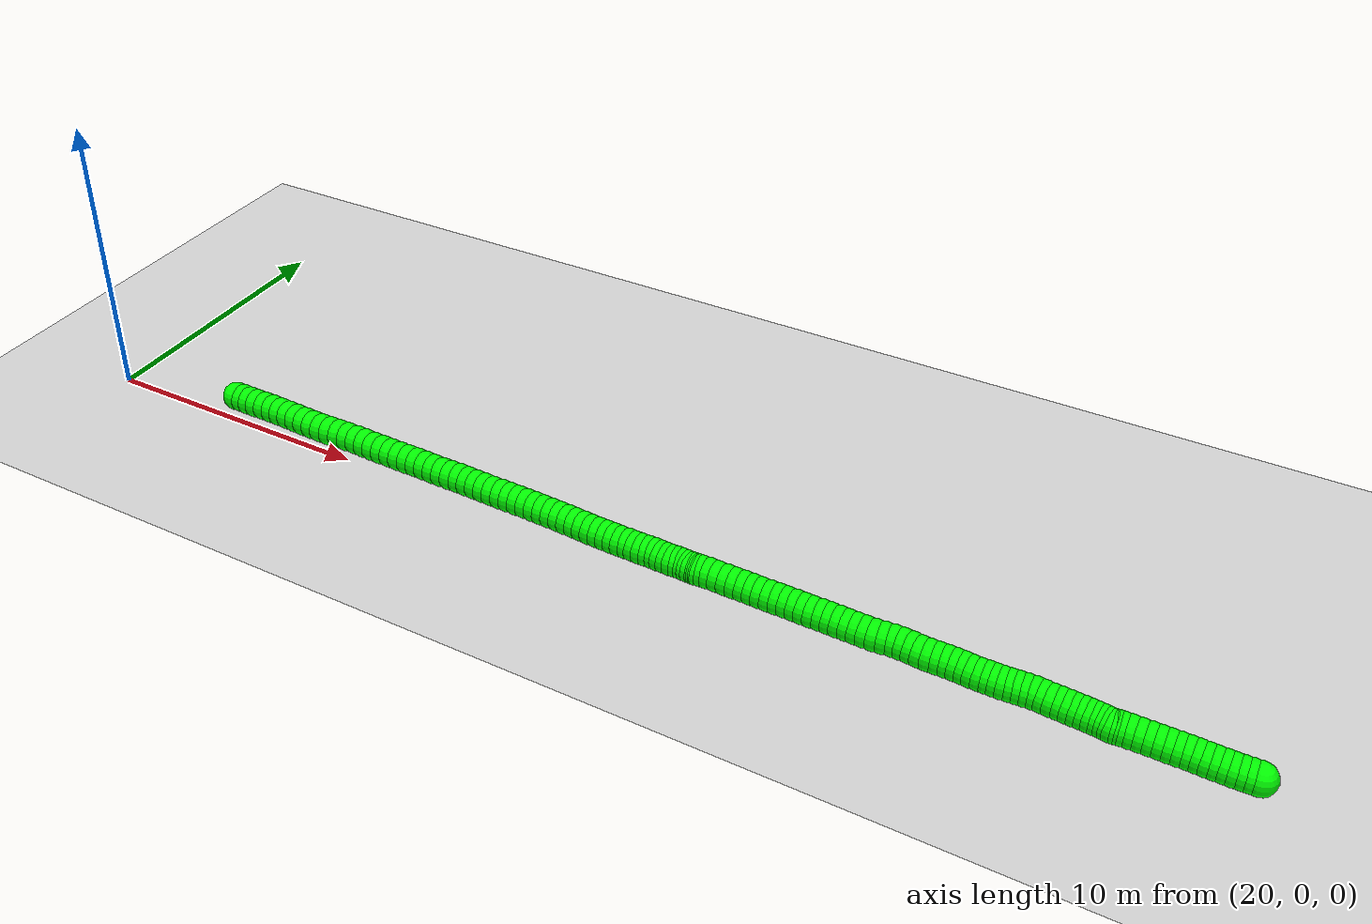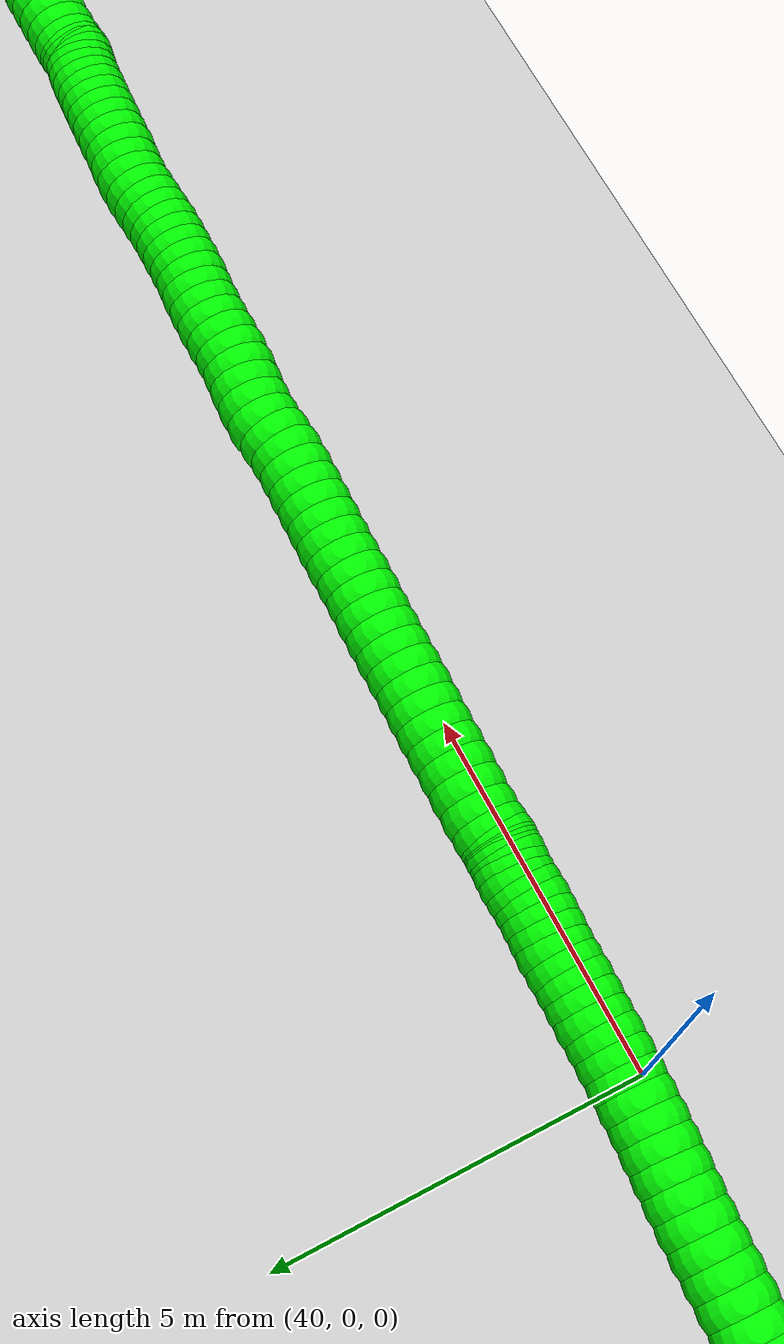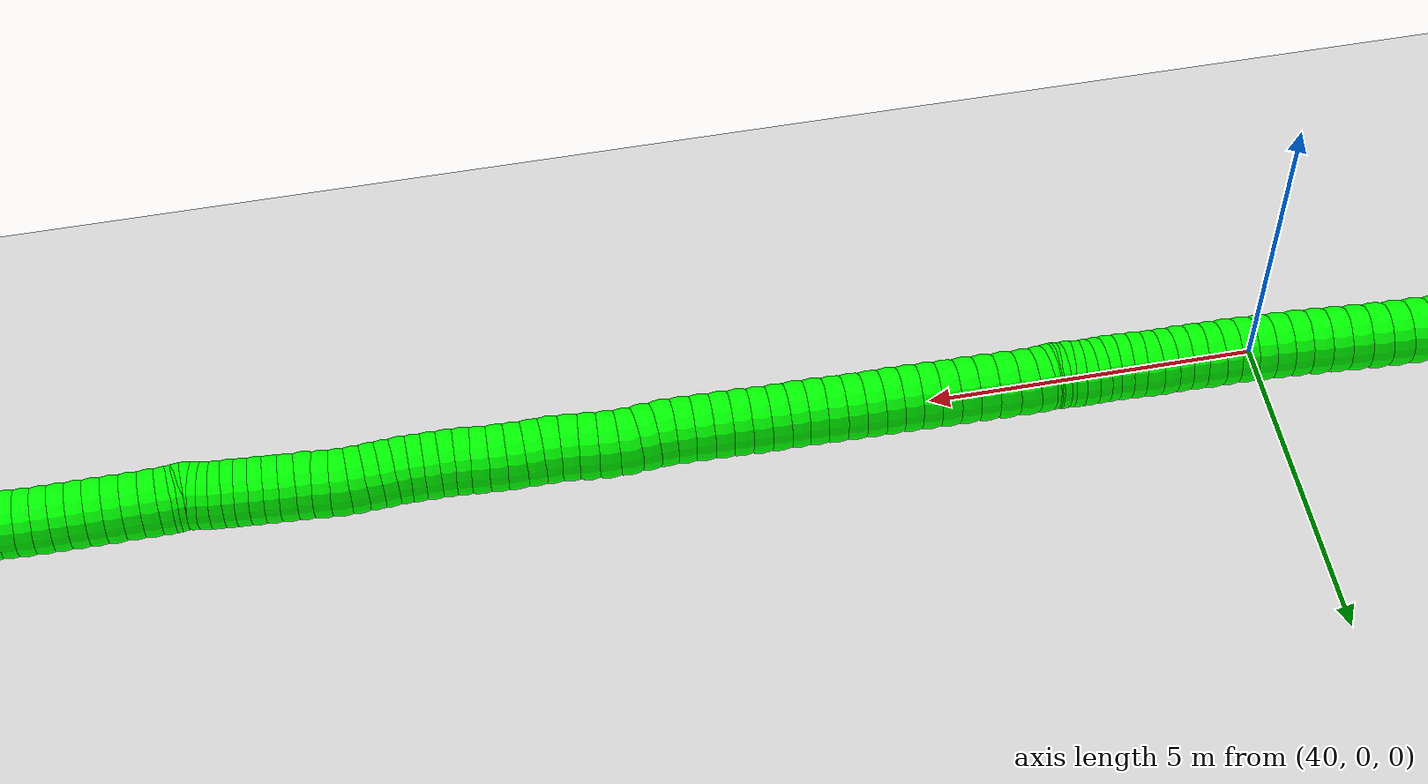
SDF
<sdf version="1.6">
 <world name="default">
  <include><uri>model://sun</uri></include>
  <include><uri>model://ground_plane</uri></include>
  <model name="marker_540">
   <static>true</static>
   <link name="link">
    <visual name="visual">
     <geometry><sphere><radius>0.5</radius></sphere></geometry>
     <material><ambient>0 1 0 1</ambient><diffuse>0 1 0 1</diffuse></material>
     <pose>60.00896098525234 0.022881425192011806 0.5 0 0 0</pose>
    </visual>
   </link>
  </model>
  <model name="marker_541">
   <static>true</static>
   <link name="link">
    <visual name="visual">
     <geometry><sphere><radius>0.5</radius></sphere></geometry>
     <material><ambient>0 1 0 1</ambient><diffuse>0 1 0 1</diffuse></material>
     <pose>59.793667570409646 0.017161068894008855 0.5 0 0 0</pose>
    </visual>
   </link>
  </model>
  <model name="marker_542">
   <static>true</static>
   <link name="link">
    <visual name="visual">
     <geometry><sphere><radius>0.5</radius></sphere></geometry>
     <material><ambient>0 1 0 1</ambient><diffuse>0 1 0 1</diffuse></material>
     <pose>59.572170396590316 0.011440712596005903 0.5 0 0 0</pose>
    </visual>
   </link>
  </model>
  <model name="marker_543">
   <static>true</static>
   <link name="link">
    <visual name="visual">
     <geometry><sphere><radius>0.5</radius></sphere></geometry>
     <material><ambient>0 1 0 1</ambient><diffuse>0 1 0 1</diffuse></material>
     <pose>59.34676715224858 0.0057203562980029515 0.5 0 0 0</pose>
    </visual>
   </link>
  </model>
  <model name="marker_544">
   <static>true</static>
   <link name="link">
    <visual name="visual">
     <geometry><sphere><radius>0.5</radius></sphere></geometry>
     <material><ambient>0 1 0 1</ambient><diffuse>0 1 0 1</diffuse></material>
     <pose>59.1172280685782 0.008989131326470088 0.5 0 0 0</pose>
    </visual>
   </link>
  </model>
  <model name="marker_545">
   <static>true</static>
   <link name="link">
    <visual name="visual">
     <geometry><sphere><radius>0.5</radius></sphere></geometry>
     <material><ambient>0 1 0 1</ambient><diffuse>0 1 0 1</diffuse></material>
     <pose>58.88125545699433 0.013892293865541722 0.5 0 0 0</pose>
    </visual>
   </link>
  </model>
  <model name="marker_546">
   <static>true</static>
   <link name="link">
    <visual name="visual">
     <geometry><sphere><radius>0.5</radius></sphere></geometry>
     <material><ambient>0 1 0 1</ambient><diffuse>0 1 0 1</diffuse></material>
     <pose>58.64137677495336 0.017569665769845446 0.5 0 0 0</pose>
    </visual>
   </link>
  </model>
  <model name="marker_547">
   <static>true</static>
   <link name="link">
    <visual name="visual">
     <geometry><sphere><radius>0.5</radius></sphere></geometry>
     <material><ambient>0 1 0 1</ambient><diffuse>0 1 0 1</diffuse></material>
     <pose>58.39920040439285 0.027375990847988713 0.5 0 0 0</pose>
    </visual>
   </link>
  </model>
  <model name="marker_548">
   <static>true</static>
   <link name="link">
    <visual name="visual">
     <geometry><sphere><radius>0.5</radius></sphere></geometry>
     <material><ambient>0 1 0 1</ambient><diffuse>0 1 0 1</diffuse></material>
     <pose>58.15403703873081 0.03309634714599167 0.5 0 0 0</pose>
    </visual>
   </link>
  </model>
  <model name="marker_549">
   <static>true</static>
   <link name="link">
    <visual name="visual">
     <geometry><sphere><radius>0.5</radius></sphere></geometry>
     <material><ambient>0 1 0 1</ambient><diffuse>0 1 0 1</diffuse></material>
     <pose>57.908873673068776 0.03268775027015507 0.5 0 0 0</pose>
    </visual>
   </link>
  </model>
  <model name="marker_550">
   <static>true</static>
   <link name="link">
    <visual name="visual">
     <geometry><sphere><radius>0.5</radius></sphere></geometry>
     <material><ambient>0 1 0 1</ambient><diffuse>0 1 0 1</diffuse></material>
     <pose>57.654979091039 0.03391354090492298 0.5 0 0 0</pose>
    </visual>
   </link>
  </model>
  <model name="marker_551">
   <static>true</static>
   <link name="link">
    <visual name="visual">
     <geometry><sphere><radius>0.5</radius></sphere></geometry>
     <material><ambient>0 1 0 1</ambient><diffuse>0 1 0 1</diffuse></material>
     <pose>57.39878682045705 0.03309634714599167 0.5 0 0 0</pose>
    </visual>
   </link>
  </model>
  <model name="marker_552">
   <static>true</static>
   <link name="link">
    <visual name="visual">
     <geometry><sphere><radius>0.5</radius></sphere></geometry>
     <material><ambient>0 1 0 1</ambient><diffuse>0 1 0 1</diffuse></material>
     <pose>57.13363356463581 0.033504944021828256 0.5 0 0 0</pose>
    </visual>
   </link>
  </model>
  <model name="marker_553">
   <static>true</static>
   <link name="link">
    <visual name="visual">
     <geometry><sphere><radius>0.5</radius></sphere></geometry>
     <material><ambient>0 1 0 1</ambient><diffuse>0 1 0 1</diffuse></material>
     <pose>56.87031845962368 0.03227915338706035 0.5 0 0 0</pose>
    </visual>
   </link>
  </model>
  <model name="marker_554">
   <static>true</static>
   <link name="link">
    <visual name="visual">
     <geometry><sphere><radius>0.5</radius></sphere></geometry>
     <material><ambient>0 1 0 1</ambient><diffuse>0 1 0 1</diffuse></material>
     <pose>56.604705666092 0.03105336275229244 0.5 0 0 0</pose>
    </visual>
   </link>
  </model>
  <model name="marker_555">
   <static>true</static>
   <link name="link">
    <visual name="visual">
     <geometry><sphere><radius>0.5</radius></sphere></geometry>
     <material><ambient>0 1 0 1</ambient><diffuse>0 1 0 1</diffuse></material>
     <pose>56.37493681355008 0.026558797096315534 0.5 0 0 0</pose>
    </visual>
   </link>
  </model>
  <model name="marker_556">
   <static>true</static>
   <link name="link">
    <visual name="visual">
     <geometry><sphere><radius>0.5</radius></sphere></geometry>
     <material><ambient>0 1 0 1</ambient><diffuse>0 1 0 1</diffuse></material>
     <pose>56.24626625616187 0.017569665769845446 0.5 0 0 0</pose>
    </visual>
   </link>
  </model>
  <model name="marker_557">
   <static>true</static>
   <link name="link">
    <visual name="visual">
     <geometry><sphere><radius>0.5</radius></sphere></geometry>
     <material><ambient>0 1 0 1</ambient><diffuse>0 1 0 1</diffuse></material>
     <pose>56.200082716801525 0.010623518837074585 0.5 0 0 0</pose>
    </visual>
   </link>
  </model>
  <model name="marker_558">
   <static>true</static>
   <link name="link">
    <visual name="visual">
     <geometry><sphere><radius>0.5</radius></sphere></geometry>
     <material><ambient>0 1 0 1</ambient><diffuse>0 1 0 1</diffuse></material>
     <pose>56.157575479059396 0.0036773719043037252 0.5 0 0 0</pose>
    </visual>
   </link>
  </model>
  <model name="marker_559">
   <static>true</static>
   <link name="link">
    <visual name="visual">
     <geometry><sphere><radius>0.5</radius></sphere></geometry>
     <material><ambient>0 1 0 1</ambient><diffuse>0 1 0 1</diffuse></material>
     <pose>56.07279077247933 0.0 0.5 0 0 0</pose>
    </visual>
   </link>
  </model>
  <model name="marker_560">
   <static>true</static>
   <link name="link">
    <visual name="visual">
     <geometry><sphere><radius>0.5</radius></sphere></geometry>
     <material><ambient>0 1 0 1</ambient><diffuse>0 1 0 1</diffuse></material>
     <pose>55.954689582267946 0.020838440798312582 0.5 0 0 0</pose>
    </visual>
   </link>
  </model>
  <model name="marker_561">
   <static>true</static>
   <link name="link">
    <visual name="visual">
     <geometry><sphere><radius>0.5</radius></sphere></geometry>
     <material><ambient>0 1 0 1</ambient><diffuse>0 1 0 1</diffuse></material>
     <pose>55.81269243140762 0.04576285037676548 0.5 0 0 0</pose>
    </visual>
   </link>
  </model>
  <model name="marker_562">
   <static>true</static>
   <link name="link">
    <visual name="visual">
     <geometry><sphere><radius>0.5</radius></sphere></geometry>
     <material><ambient>0 1 0 1</ambient><diffuse>0 1 0 1</diffuse></material>
     <pose>55.647488626447675 0.0641497098982841 0.5 0 0 0</pose>
    </visual>
   </link>
  </model>
  <model name="marker_563">
   <static>true</static>
   <link name="link">
    <visual name="visual">
     <geometry><sphere><radius>0.5</radius></sphere></geometry>
     <material><ambient>0 1 0 1</ambient><diffuse>0 1 0 1</diffuse></material>
     <pose>55.46620100178562 0.07354743810059079 0.5 0 0 0</pose>
    </visual>
   </link>
  </model>
  <model name="marker_564">
   <static>true</static>
   <link name="link">
    <visual name="visual">
     <geometry><sphere><radius>0.5</radius></sphere></geometry>
     <material><ambient>0 1 0 1</ambient><diffuse>0 1 0 1</diffuse></material>
     <pose>55.27181655255566 0.08866552260090041 0.5 0 0 0</pose>
    </visual>
   </link>
  </model>
  <model name="marker_565">
   <static>true</static>
   <link name="link">
    <visual name="visual">
     <geometry><sphere><radius>0.5</radius></sphere></geometry>
     <material><ambient>0 1 0 1</ambient><diffuse>0 1 0 1</diffuse></material>
     <pose>55.066632967244665 0.1017406227075108 0.5 0 0 0</pose>
    </visual>
   </link>
  </model>
  <model name="marker_566">
   <static>true</static>
   <link name="link">
    <visual name="visual">
     <geometry><sphere><radius>0.5</radius></sphere></geometry>
     <material><ambient>0 1 0 1</ambient><diffuse>0 1 0 1</diffuse></material>
     <pose>54.8483525573331 0.11358993217935331 0.5 0 0 0</pose>
    </visual>
   </link>
  </model>
  <model name="marker_567">
   <static>true</static>
   <link name="link">
    <visual name="visual">
     <geometry><sphere><radius>0.5</radius></sphere></geometry>
     <material><ambient>0 1 0 1</ambient><diffuse>0 1 0 1</diffuse></material>
     <pose>54.61858370479118 0.12789082291347348 0.5 0 0 0</pose>
    </visual>
   </link>
  </model>
  <model name="marker_568">
   <static>true</static>
   <link name="link">
    <visual name="visual">
     <geometry><sphere><radius>0.5</radius></sphere></geometry>
     <material><ambient>0 1 0 1</ambient><diffuse>0 1 0 1</diffuse></material>
     <pose>54.37824548503977 0.13565416360517565 0.5 0 0 0</pose>
    </visual>
   </link>
  </model>
  <model name="marker_569">
   <static>true</static>
   <link name="link">
    <visual name="visual">
     <geometry><sphere><radius>0.5</radius></sphere></geometry>
     <material><ambient>0 1 0 1</ambient><diffuse>0 1 0 1</diffuse></material>
     <pose>54.128716511177544 0.16180436381839647 0.5 0 0 0</pose>
    </visual>
   </link>
  </model>
  <model name="marker_570">
   <static>true</static>
   <link name="link">
    <visual name="visual">
     <geometry><sphere><radius>0.5</radius></sphere></geometry>
     <material><ambient>0 1 0 1</ambient><diffuse>0 1 0 1</diffuse></material>
     <pose>53.88263407012728 0.1785568358293106 0.5 0 0 0</pose>
    </visual>
   </link>
  </model>
  <model name="marker_571">
   <static>true</static>
   <link name="link">
    <visual name="visual">
     <geometry><sphere><radius>0.5</radius></sphere></geometry>
     <material><ambient>0 1 0 1</ambient><diffuse>0 1 0 1</diffuse></material>
     <pose>53.64045769956677 0.17324507640714423 0.5 0 0 0</pose>
    </visual>
   </link>
  </model>
  <model name="marker_572">
   <static>true</static>
   <link name="link">
    <visual name="visual">
     <geometry><sphere><radius>0.5</radius></sphere></geometry>
     <material><ambient>0 1 0 1</ambient><diffuse>0 1 0 1</diffuse></material>
     <pose>53.41068884702484 0.1589441856657659 0.5 0 0 0</pose>
    </visual>
   </link>
  </model>
  <model name="marker_573">
   <static>true</static>
   <link name="link">
    <visual name="visual">
     <geometry><sphere><radius>0.5</radius></sphere></geometry>
     <material><ambient>0 1 0 1</ambient><diffuse>0 1 0 1</diffuse></material>
     <pose>53.19286797482372 0.14464329493164577 0.5 0 0 0</pose>
    </visual>
   </link>
  </model>
  <model name="marker_574">
   <static>true</static>
   <link name="link">
    <visual name="visual">
     <geometry><sphere><radius>0.5</radius></sphere></geometry>
     <material><ambient>0 1 0 1</ambient><diffuse>0 1 0 1</diffuse></material>
     <pose>52.97320895178083 0.13034240419026744 0.5 0 0 0</pose>
    </visual>
   </link>
  </model>
  <model name="marker_575">
   <static>true</static>
   <link name="link">
    <visual name="visual">
     <geometry><sphere><radius>0.5</radius></sphere></geometry>
     <material><ambient>0 1 0 1</ambient><diffuse>0 1 0 1</diffuse></material>
     <pose>52.754469004191485 0.12789082291347348 0.5 0 0 0</pose>
    </visual>
   </link>
  </model>
  <model name="marker_576">
   <static>true</static>
   <link name="link">
    <visual name="visual">
     <geometry><sphere><radius>0.5</radius></sphere></geometry>
     <material><ambient>0 1 0 1</ambient><diffuse>0 1 0 1</diffuse></material>
     <pose>52.53274206150061 0.12993380730717272 0.5 0 0 0</pose>
    </visual>
   </link>
  </model>
  <model name="marker_577">
   <static>true</static>
   <link name="link">
    <visual name="visual">
     <geometry><sphere><radius>0.5</radius></sphere></geometry>
     <material><ambient>0 1 0 1</ambient><diffuse>0 1 0 1</diffuse></material>
     <pose>52.303432746669124 0.12993380730717272 0.5 0 0 0</pose>
    </visual>
   </link>
  </model>
  <model name="marker_578">
   <static>true</static>
   <link name="link">
    <visual name="visual">
     <geometry><sphere><radius>0.5</radius></sphere></geometry>
     <material><ambient>0 1 0 1</ambient><diffuse>0 1 0 1</diffuse></material>
     <pose>52.0660815219866 0.13851434175054805 0.5 0 0 0</pose>
    </visual>
   </link>
  </model>
  <model name="marker_579">
   <static>true</static>
   <link name="link">
    <visual name="visual">
     <geometry><sphere><radius>0.5</radius></sphere></geometry>
     <material><ambient>0 1 0 1</ambient><diffuse>0 1 0 1</diffuse></material>
     <pose>51.822067000584326 0.16098717005946514 0.5 0 0 0</pose>
    </visual>
   </link>
  </model>
  <model name="marker_580">
   <static>true</static>
   <link name="link">
    <visual name="visual">
     <geometry><sphere><radius>0.5</radius></sphere></geometry>
     <material><ambient>0 1 0 1</ambient><diffuse>0 1 0 1</diffuse></material>
     <pose>51.571618951333875 0.17283647953130765 0.5 0 0 0</pose>
    </visual>
   </link>
  </model>
  <model name="marker_581">
   <static>true</static>
   <link name="link">
    <visual name="visual">
     <geometry><sphere><radius>0.5</radius></sphere></geometry>
     <material><ambient>0 1 0 1</ambient><diffuse>0 1 0 1</diffuse></material>
     <pose>51.311520610262164 0.1797826264640785 0.5 0 0 0</pose>
    </visual>
   </link>
  </model>
  <model name="marker_582">
   <static>true</static>
   <link name="link">
    <visual name="visual">
     <geometry><sphere><radius>0.5</radius></sphere></geometry>
     <material><ambient>0 1 0 1</ambient><diffuse>0 1 0 1</diffuse></material>
     <pose>51.04452920363182 0.17651385143561138 0.5 0 0 0</pose>
    </visual>
   </link>
  </model>
  <model name="marker_583">
   <static>true</static>
   <link name="link">
    <visual name="visual">
     <geometry><sphere><radius>0.5</radius></sphere></geometry>
     <material><ambient>0 1 0 1</ambient><diffuse>0 1 0 1</diffuse></material>
     <pose>50.7750103396104 0.17161068889653974 0.5 0 0 0</pose>
    </visual>
   </link>
  </model>
  <model name="marker_584">
   <static>true</static>
   <link name="link">
    <visual name="visual">
     <geometry><sphere><radius>0.5</radius></sphere></geometry>
     <material><ambient>0 1 0 1</ambient><diffuse>0 1 0 1</diffuse></material>
     <pose>50.50112586738877 0.1838685952442188 0.5 0 0 0</pose>
    </visual>
   </link>
  </model>
  <model name="marker_585">
   <static>true</static>
   <link name="link">
    <visual name="visual">
     <geometry><sphere><radius>0.5</radius></sphere></geometry>
     <material><ambient>0 1 0 1</ambient><diffuse>0 1 0 1</diffuse></material>
     <pose>50.224943706647615 0.21124458609220756 0.5 0 0 0</pose>
    </visual>
   </link>
  </model>
  <model name="marker_586">
   <static>true</static>
   <link name="link">
    <visual name="visual">
     <geometry><sphere><radius>0.5</radius></sphere></geometry>
     <material><ambient>0 1 0 1</ambient><diffuse>0 1 0 1</diffuse></material>
     <pose>49.94370663112429 0.2324916237663567 0.5 0 0 0</pose>
    </visual>
   </link>
  </model>
  <model name="marker_587">
   <static>true</static>
   <link name="link">
    <visual name="visual">
     <geometry><sphere><radius>0.5</radius></sphere></geometry>
     <material><ambient>0 1 0 1</ambient><diffuse>0 1 0 1</diffuse></material>
     <pose>49.66178024908427 0.23494320503589253 0.5 0 0 0</pose>
    </visual>
   </link>
  </model>
  <model name="marker_588">
   <static>true</static>
   <link name="link">
    <visual name="visual">
     <geometry><sphere><radius>0.5</radius></sphere></geometry>
     <material><ambient>0 1 0 1</ambient><diffuse>0 1 0 1</diffuse></material>
     <pose>49.37663710307119 0.20634142355313592 0.5 0 0 0</pose>
    </visual>
   </link>
  </model>
  <model name="marker_589">
   <static>true</static>
   <link name="link">
    <visual name="visual">
     <geometry><sphere><radius>0.5</radius></sphere></geometry>
     <material><ambient>0 1 0 1</ambient><diffuse>0 1 0 1</diffuse></material>
     <pose>49.09241303247899 0.1838685952442188 0.5 0 0 0</pose>
    </visual>
   </link>
  </model>
  <model name="marker_590">
   <static>true</static>
   <link name="link">
    <visual name="visual">
     <geometry><sphere><radius>0.5</radius></sphere></geometry>
     <material><ambient>0 1 0 1</ambient><diffuse>0 1 0 1</diffuse></material>
     <pose>48.805891273367244 0.18305140149254565 0.5 0 0 0</pose>
    </visual>
   </link>
  </model>
  <model name="marker_591">
   <static>true</static>
   <link name="link">
    <visual name="visual">
     <geometry><sphere><radius>0.5</radius></sphere></geometry>
     <material><ambient>0 1 0 1</ambient><diffuse>0 1 0 1</diffuse></material>
     <pose>48.52304581590635 0.18999754841805835 0.5 0 0 0</pose>
    </visual>
   </link>
  </model>
  <model name="marker_592">
   <static>true</static>
   <link name="link">
    <visual name="visual">
     <geometry><sphere><radius>0.5</radius></sphere></geometry>
     <material><ambient>0 1 0 1</ambient><diffuse>0 1 0 1</diffuse></material>
     <pose>48.240659896155904 0.19735229223392395 0.5 0 0 0</pose>
    </visual>
   </link>
  </model>
  <model name="marker_593">
   <static>true</static>
   <link name="link">
    <visual name="visual">
     <geometry><sphere><radius>0.5</radius></sphere></geometry>
     <material><ambient>0 1 0 1</ambient><diffuse>0 1 0 1</diffuse></material>
     <pose>47.958273976372794 0.2034812454077635 0.5 0 0 0</pose>
    </visual>
   </link>
  </model>
  <model name="marker_594">
   <static>true</static>
   <link name="link">
    <visual name="visual">
     <geometry><sphere><radius>0.5</radius></sphere></geometry>
     <material><ambient>0 1 0 1</ambient><diffuse>0 1 0 1</diffuse></material>
     <pose>47.67519875007301 0.21247037672697547 0.5 0 0 0</pose>
    </visual>
   </link>
  </model>
  <model name="marker_595">
   <static>true</static>
   <link name="link">
    <visual name="visual">
     <geometry><sphere><radius>0.5</radius></sphere></geometry>
     <material><ambient>0 1 0 1</ambient><diffuse>0 1 0 1</diffuse></material>
     <pose>47.39442121226012 0.2157391517554426 0.5 0 0 0</pose>
    </visual>
   </link>
  </model>
  <model name="marker_596">
   <static>true</static>
   <link name="link">
    <visual name="visual">
     <geometry><sphere><radius>0.5</radius></sphere></geometry>
     <material><ambient>0 1 0 1</ambient><diffuse>0 1 0 1</diffuse></material>
     <pose>47.112724599059 0.21328757048590677 0.5 0 0 0</pose>
    </visual>
   </link>
  </model>
  <model name="marker_597">
   <static>true</static>
   <link name="link">
    <visual name="visual">
     <geometry><sphere><radius>0.5</radius></sphere></geometry>
     <material><ambient>0 1 0 1</ambient><diffuse>0 1 0 1</diffuse></material>
     <pose>46.82896006617723 0.21737353926604705 0.5 0 0 0</pose>
    </visual>
   </link>
  </model>
  <model name="marker_598">
   <static>true</static>
   <link name="link">
    <visual name="visual">
     <geometry><sphere><radius>0.5</radius></sphere></geometry>
     <material><ambient>0 1 0 1</ambient><diffuse>0 1 0 1</diffuse></material>
     <pose>46.545425302134355 0.22758846122728507 0.5 0 0 0</pose>
    </visual>
   </link>
  </model>
  <model name="marker_599">
   <static>true</static>
   <link name="link">
    <visual name="visual">
     <geometry><sphere><radius>0.5</radius></sphere></geometry>
     <material><ambient>0 1 0 1</ambient><diffuse>0 1 0 1</diffuse></material>
     <pose>46.260282156153934 0.2316744300074254 0.5 0 0 0</pose>
    </visual>
   </link>
  </model>
  <model name="marker_600">
   <static>true</static>
   <link name="link">
    <visual name="visual">
     <geometry><sphere><radius>0.5</radius></sphere></geometry>
     <material><ambient>0 1 0 1</ambient><diffuse>0 1 0 1</diffuse></material>
     <pose>45.976058085561725 0.23453460816005592 0.5 0 0 0</pose>
    </visual>
   </link>
  </model>
  <model name="marker_601">
   <static>true</static>
   <link name="link">
    <visual name="visual">
     <geometry><sphere><radius>0.5</radius></sphere></geometry>
     <material><ambient>0 1 0 1</ambient><diffuse>0 1 0 1</diffuse></material>
     <pose>45.691834014969515 0.23371741440112462 0.5 0 0 0</pose>
    </visual>
   </link>
  </model>
  <model name="marker_602">
   <static>true</static>
   <link name="link">
    <visual name="visual">
     <geometry><sphere><radius>0.5</radius></sphere></geometry>
     <material><ambient>0 1 0 1</ambient><diffuse>0 1 0 1</diffuse></material>
     <pose>45.407380175538414 0.23576039879482383 0.5 0 0 0</pose>
    </visual>
   </link>
  </model>
  <model name="marker_603">
   <static>true</static>
   <link name="link">
    <visual name="visual">
     <geometry><sphere><radius>0.5</radius></sphere></geometry>
     <material><ambient>0 1 0 1</ambient><diffuse>0 1 0 1</diffuse></material>
     <pose>45.12591333117619 0.2435237394792679 0.5 0 0 0</pose>
    </visual>
   </link>
  </model>
  <model name="marker_604">
   <static>true</static>
   <link name="link">
    <visual name="visual">
     <geometry><sphere><radius>0.5</radius></sphere></geometry>
     <material><ambient>0 1 0 1</ambient><diffuse>0 1 0 1</diffuse></material>
     <pose>44.840080878646425 0.2504698864120387 0.5 0 0 0</pose>
    </visual>
   </link>
  </model>
  <model name="marker_605">
   <static>true</static>
   <link name="link">
    <visual name="visual">
     <geometry><sphere><radius>0.5</radius></sphere></geometry>
     <material><ambient>0 1 0 1</ambient><diffuse>0 1 0 1</diffuse></material>
     <pose>44.54988281788383 0.25210427392264323 0.5 0 0 0</pose>
    </visual>
   </link>
  </model>
  <model name="marker_606">
   <static>true</static>
   <link name="link">
    <visual name="visual">
     <geometry><sphere><radius>0.5</radius></sphere></geometry>
     <material><ambient>0 1 0 1</ambient><diffuse>0 1 0 1</diffuse></material>
     <pose>44.25371076698347 0.25537304895111035 0.5 0 0 0</pose>
    </visual>
   </link>
  </model>
  <model name="marker_607">
   <static>true</static>
   <link name="link">
    <visual name="visual">
     <geometry><sphere><radius>0.5</radius></sphere></geometry>
     <material><ambient>0 1 0 1</ambient><diffuse>0 1 0 1</diffuse></material>
     <pose>43.949956343909854 0.2635449865186491 0.5 0 0 0</pose>
    </visual>
   </link>
  </model>
  <model name="marker_608">
   <static>true</static>
   <link name="link">
    <visual name="visual">
     <geometry><sphere><radius>0.5</radius></sphere></geometry>
     <material><ambient>0 1 0 1</ambient><diffuse>0 1 0 1</diffuse></material>
     <pose>43.64137677495826 0.26844814905772074 0.5 0 0 0</pose>
    </visual>
   </link>
  </model>
  <model name="marker_609">
   <static>true</static>
   <link name="link">
    <visual name="visual">
     <geometry><sphere><radius>0.5</radius></sphere></geometry>
     <material><ambient>0 1 0 1</ambient><diffuse>0 1 0 1</diffuse></material>
     <pose>43.38334635356719 0.2594590177385088 0.5 0 0 0</pose>
    </visual>
   </link>
  </model>
  <model name="marker_610">
   <static>true</static>
   <link name="link">
    <visual name="visual">
     <geometry><sphere><radius>0.5</radius></sphere></geometry>
     <material><ambient>0 1 0 1</ambient><diffuse>0 1 0 1</diffuse></material>
     <pose>43.22917145352717 0.2439323363623626 0.5 0 0 0</pose>
    </visual>
   </link>
  </model>
  <model name="marker_611">
   <static>true</static>
   <link name="link">
    <visual name="visual">
     <geometry><sphere><radius>0.5</radius></sphere></geometry>
     <material><ambient>0 1 0 1</ambient><diffuse>0 1 0 1</diffuse></material>
     <pose>43.17954138138752 0.24107215820973207 0.5 0 0 0</pose>
    </visual>
   </link>
  </model>
  <model name="marker_612">
   <static>true</static>
   <link name="link">
    <visual name="visual">
     <geometry><sphere><radius>0.5</radius></sphere></geometry>
     <material><ambient>0 1 0 1</ambient><diffuse>0 1 0 1</diffuse></material>
     <pose>43.15449657644615 0.24229794884449998 0.5 0 0 0</pose>
    </visual>
   </link>
  </model>
  <model name="marker_613">
   <static>true</static>
   <link name="link">
    <visual name="visual">
     <geometry><sphere><radius>0.5</radius></sphere></geometry>
     <material><ambient>0 1 0 1</ambient><diffuse>0 1 0 1</diffuse></material>
     <pose>43.08763384034462 0.24883549890143425 0.5 0 0 0</pose>
    </visual>
   </link>
  </model>
  <model name="marker_614">
   <static>true</static>
   <link name="link">
    <visual name="visual">
     <geometry><sphere><radius>0.5</radius></sphere></geometry>
     <material><ambient>0 1 0 1</ambient><diffuse>0 1 0 1</diffuse></material>
     <pose>42.988373696065324 0.246792514507735 0.5 0 0 0</pose>
    </visual>
   </link>
  </model>
  <model name="marker_615">
   <static>true</static>
   <link name="link">
    <visual name="visual">
     <geometry><sphere><radius>0.5</radius></sphere></geometry>
     <material><ambient>0 1 0 1</ambient><diffuse>0 1 0 1</diffuse></material>
     <pose>42.854877992733826 0.2590504208554141 0.5 0 0 0</pose>
    </visual>
   </link>
  </model>
  <model name="marker_616">
   <static>true</static>
   <link name="link">
    <visual name="visual">
     <geometry><sphere><radius>0.5</radius></sphere></geometry>
     <material><ambient>0 1 0 1</ambient><diffuse>0 1 0 1</diffuse></material>
     <pose>42.69955424843403 0.26763095529878944 0.5 0 0 0</pose>
    </visual>
   </link>
  </model>
  <model name="marker_617">
   <static>true</static>
   <link name="link">
    <visual name="visual">
     <geometry><sphere><radius>0.5</radius></sphere></geometry>
     <material><ambient>0 1 0 1</ambient><diffuse>0 1 0 1</diffuse></material>
     <pose>42.530214604112786 0.2615020021249499 0.5 0 0 0</pose>
    </visual>
   </link>
  </model>
  <model name="marker_618">
   <static>true</static>
   <link name="link">
    <visual name="visual">
     <geometry><sphere><radius>0.5</radius></sphere></geometry>
     <material><ambient>0 1 0 1</ambient><diffuse>0 1 0 1</diffuse></material>
     <pose>42.34777813519097 0.2533300645646693 0.5 0 0 0</pose>
    </visual>
   </link>
  </model>
  <model name="marker_619">
   <static>true</static>
   <link name="link">
    <visual name="visual">
     <geometry><sphere><radius>0.5</radius></sphere></geometry>
     <material><ambient>0 1 0 1</ambient><diffuse>0 1 0 1</diffuse></material>
     <pose>42.15155553511926 0.2590504208554141 0.5 0 0 0</pose>
    </visual>
   </link>
  </model>
  <model name="marker_620">
   <static>true</static>
   <link name="link">
    <visual name="visual">
     <geometry><sphere><radius>0.5</radius></sphere></geometry>
     <material><ambient>0 1 0 1</ambient><diffuse>0 1 0 1</diffuse></material>
     <pose>41.94660171867981 0.26763095529878944 0.5 0 0 0</pose>
    </visual>
   </link>
  </model>
  <model name="marker_621">
   <static>true</static>
   <link name="link">
    <visual name="visual">
     <geometry><sphere><radius>0.5</radius></sphere></geometry>
     <material><ambient>0 1 0 1</ambient><diffuse>0 1 0 1</diffuse></material>
     <pose>41.732227379258 0.2823404429232625 0.5 0 0 0</pose>
    </visual>
   </link>
  </model>
  <model name="marker_622">
   <static>true</static>
   <link name="link">
    <visual name="visual">
     <geometry><sphere><radius>0.5</radius></sphere></geometry>
     <material><ambient>0 1 0 1</ambient><diffuse>0 1 0 1</diffuse></material>
     <pose>41.50659436607737 0.2811146522884946 0.5 0 0 0</pose>
    </visual>
   </link>
  </model>
  <model name="marker_623">
   <static>true</static>
   <link name="link">
    <visual name="visual">
     <geometry><sphere><radius>0.5</radius></sphere></geometry>
     <material><ambient>0 1 0 1</ambient><diffuse>0 1 0 1</diffuse></material>
     <pose>41.274757593854794 0.2758028928663282 0.5 0 0 0</pose>
    </visual>
   </link>
  </model>
  <model name="marker_624">
   <static>true</static>
   <link name="link">
    <visual name="visual">
     <geometry><sphere><radius>0.5</radius></sphere></geometry>
     <material><ambient>0 1 0 1</ambient><diffuse>0 1 0 1</diffuse></material>
     <pose>41.03235145445539 0.2794802647706319 0.5 0 0 0</pose>
    </visual>
   </link>
  </model>
  <model name="marker_625">
   <static>true</static>
   <link name="link">
    <visual name="visual">
     <geometry><sphere><radius>0.5</radius></sphere></geometry>
     <material><ambient>0 1 0 1</ambient><diffuse>0 1 0 1</diffuse></material>
     <pose>40.78282248059316 0.2876522023381707 0.5 0 0 0</pose>
    </visual>
   </link>
  </model>
  <model name="marker_626">
   <static>true</static>
   <link name="link">
    <visual name="visual">
     <geometry><sphere><radius>0.5</radius></sphere></geometry>
     <material><ambient>0 1 0 1</ambient><diffuse>0 1 0 1</diffuse></material>
     <pose>40.52800882314252 0.2847920241927983 0.5 0 0 0</pose>
    </visual>
   </link>
  </model>
  <model name="marker_627">
   <static>true</static>
   <link name="link">
    <visual name="visual">
     <geometry><sphere><radius>0.5</radius></sphere></geometry>
     <material><ambient>0 1 0 1</ambient><diffuse>0 1 0 1</diffuse></material>
     <pose>40.268829557459036 0.29092097736663786 0.5 0 0 0</pose>
    </visual>
   </link>
  </model>
  <model name="marker_628">
   <static>true</static>
   <link name="link">
    <visual name="visual">
     <geometry><sphere><radius>0.5</radius></sphere></geometry>
     <material><ambient>0 1 0 1</ambient><diffuse>0 1 0 1</diffuse></material>
     <pose>39.99839161804938 0.30072730244478113 0.5 0 0 0</pose>
    </visual>
   </link>
  </model>
  <model name="marker_629">
   <static>true</static>
   <link name="link">
    <visual name="visual">
     <geometry><sphere><radius>0.5</radius></sphere></geometry>
     <material><ambient>0 1 0 1</ambient><diffuse>0 1 0 1</diffuse></material>
     <pose>39.71991176875603 0.3097164337712512 0.5 0 0 0</pose>
    </visual>
   </link>
  </model>
  <model name="marker_630">
   <static>true</static>
   <link name="link">
    <visual name="visual">
     <geometry><sphere><radius>0.5</radius></sphere></geometry>
     <material><ambient>0 1 0 1</ambient><diffuse>0 1 0 1</diffuse></material>
     <pose>39.43407931622627 0.3215657432430937 0.5 0 0 0</pose>
    </visual>
   </link>
  </model>
  <model name="marker_631">
   <static>true</static>
   <link name="link">
    <visual name="visual">
     <geometry><sphere><radius>0.5</radius></sphere></geometry>
     <material><ambient>0 1 0 1</ambient><diffuse>0 1 0 1</diffuse></material>
     <pose>39.14135379807257 0.34158699027521683 0.5 0 0 0</pose>
    </visual>
   </link>
  </model>
  <model name="marker_632">
   <static>true</static>
   <link name="link">
    <visual name="visual">
     <geometry><sphere><radius>0.5</radius></sphere></geometry>
     <material><ambient>0 1 0 1</ambient><diffuse>0 1 0 1</diffuse></material>
     <pose>38.84150544552136 0.36160823731459807 0.5 0 0 0</pose>
    </visual>
   </link>
  </model>
  <model name="marker_633">
   <static>true</static>
   <link name="link">
    <visual name="visual">
     <geometry><sphere><radius>0.5</radius></sphere></geometry>
     <material><ambient>0 1 0 1</ambient><diffuse>0 1 0 1</diffuse></material>
     <pose>38.5377510224804 0.382038081229816 0.5 0 0 0</pose>
    </visual>
   </link>
  </model>
  <model name="marker_634">
   <static>true</static>
   <link name="link">
    <visual name="visual">
     <geometry><sphere><radius>0.5</radius></sphere></geometry>
     <material><ambient>0 1 0 1</ambient><diffuse>0 1 0 1</diffuse></material>
     <pose>38.22641422729882 0.40124213451026586 0.5 0 0 0</pose>
    </visual>
   </link>
  </model>
  <model name="marker_635">
   <static>true</static>
   <link name="link">
    <visual name="visual">
     <geometry><sphere><radius>0.5</radius></sphere></geometry>
     <material><ambient>0 1 0 1</ambient><diffuse>0 1 0 1</diffuse></material>
     <pose>37.91186066817683 0.41390863774103975 0.5 0 0 0</pose>
    </visual>
   </link>
  </model>
  <model name="marker_636">
   <static>true</static>
   <link name="link">
    <visual name="visual">
     <geometry><sphere><radius>0.5</radius></sphere></geometry>
     <material><ambient>0 1 0 1</ambient><diffuse>0 1 0 1</diffuse></material>
     <pose>37.595698727084624 0.4228977690675098 0.5 0 0 0</pose>
    </visual>
   </link>
  </model>
  <model name="marker_637">
   <static>true</static>
   <link name="link">
    <visual name="visual">
     <geometry><sphere><radius>0.5</radius></sphere></geometry>
     <material><ambient>0 1 0 1</ambient><diffuse>0 1 0 1</diffuse></material>
     <pose>37.2744818712429 0.4335212878973262 0.5 0 0 0</pose>
    </visual>
   </link>
  </model>
  <model name="marker_638">
   <static>true</static>
   <link name="link">
    <visual name="visual">
     <geometry><sphere><radius>0.5</radius></sphere></geometry>
     <material><ambient>0 1 0 1</ambient><diffuse>0 1 0 1</diffuse></material>
     <pose>36.94752079406967 0.4449620004933322 0.5 0 0 0</pose>
    </visual>
   </link>
  </model>
  <model name="marker_639">
   <static>true</static>
   <link name="link">
    <visual name="visual">
     <geometry><sphere><radius>0.5</radius></sphere></geometry>
     <material><ambient>0 1 0 1</ambient><diffuse>0 1 0 1</diffuse></material>
     <pose>36.62055971692909 0.4494565661565672 0.5 0 0 0</pose>
    </visual>
   </link>
  </model>
  <model name="marker_640">
   <static>true</static>
   <link name="link">
    <visual name="visual">
     <geometry><sphere><radius>0.5</radius></sphere></geometry>
     <material><ambient>0 1 0 1</ambient><diffuse>0 1 0 1</diffuse></material>
     <pose>36.29405817746629 0.45721990684101127 0.5 0 0 0</pose>
    </visual>
   </link>
  </model>
  <model name="marker_641">
   <static>true</static>
   <link name="link">
    <visual name="visual">
     <geometry><sphere><radius>0.5</radius></sphere></geometry>
     <material><ambient>0 1 0 1</ambient><diffuse>0 1 0 1</diffuse></material>
     <pose>35.9657184871944 0.4604886818694784 0.5 0 0 0</pose>
    </visual>
   </link>
  </model>
  <model name="marker_642">
   <static>true</static>
   <link name="link">
    <visual name="visual">
     <geometry><sphere><radius>0.5</radius></sphere></geometry>
     <material><ambient>0 1 0 1</ambient><diffuse>0 1 0 1</diffuse></material>
     <pose>35.63622995266273 0.4617144725042463 0.5 0 0 0</pose>
    </visual>
   </link>
  </model>
  <model name="marker_643">
   <static>true</static>
   <link name="link">
    <visual name="visual">
     <geometry><sphere><radius>0.5</radius></sphere></geometry>
     <material><ambient>0 1 0 1</ambient><diffuse>0 1 0 1</diffuse></material>
     <pose>35.30329488535175 0.4735637819760888 0.5 0 0 0</pose>
    </visual>
   </link>
  </model>
  <model name="marker_644">
   <static>true</static>
   <link name="link">
    <visual name="visual">
     <geometry><sphere><radius>0.5</radius></sphere></geometry>
     <material><ambient>0 1 0 1</ambient><diffuse>0 1 0 1</diffuse></material>
     <pose>34.96990028033033 0.4874560758416305 0.5 0 0 0</pose>
    </visual>
   </link>
  </model>
  <model name="marker_645">
   <static>true</static>
   <link name="link">
    <visual name="visual">
     <geometry><sphere><radius>0.5</radius></sphere></geometry>
     <material><ambient>0 1 0 1</ambient><diffuse>0 1 0 1</diffuse></material>
     <pose>34.634207986756714 0.49807959467144697 0.5 0 0 0</pose>
    </visual>
   </link>
  </model>
  <model name="marker_646">
   <static>true</static>
   <link name="link">
    <visual name="visual">
     <geometry><sphere><radius>0.5</radius></sphere></geometry>
     <material><ambient>0 1 0 1</ambient><diffuse>0 1 0 1</diffuse></material>
     <pose>34.29759661779488 0.5058429353631491 0.5 0 0 0</pose>
    </visual>
   </link>
  </model>
  <model name="marker_647">
   <static>true</static>
   <link name="link">
    <visual name="visual">
     <geometry><sphere><radius>0.5</radius></sphere></geometry>
     <material><ambient>0 1 0 1</ambient><diffuse>0 1 0 1</diffuse></material>
     <pose>33.95684940950439 0.5021655634588453 0.5 0 0 0</pose>
    </visual>
   </link>
  </model>
  <model name="marker_648">
   <static>true</static>
   <link name="link">
    <visual name="visual">
     <geometry><sphere><radius>0.5</radius></sphere></geometry>
     <material><ambient>0 1 0 1</ambient><diffuse>0 1 0 1</diffuse></material>
     <pose>33.61173659298107 0.5029827572177766 0.5 0 0 0</pose>
    </visual>
   </link>
  </model>
  <model name="marker_649">
   <static>true</static>
   <link name="link">
    <visual name="visual">
     <geometry><sphere><radius>0.5</radius></sphere></geometry>
     <material><ambient>0 1 0 1</ambient><diffuse>0 1 0 1</diffuse></material>
     <pose>33.26754285191127 0.5087031135085215 0.5 0 0 0</pose>
    </visual>
   </link>
  </model>
  <model name="marker_650">
   <static>true</static>
   <link name="link">
    <visual name="visual">
     <geometry><sphere><radius>0.5</radius></sphere></geometry>
     <material><ambient>0 1 0 1</ambient><diffuse>0 1 0 1</diffuse></material>
     <pose>32.916915582927984 0.520552422980364 0.5 0 0 0</pose>
    </visual>
   </link>
  </model>
  <model name="marker_651">
   <static>true</static>
   <link name="link">
    <visual name="visual">
     <geometry><sphere><radius>0.5</radius></sphere></geometry>
     <material><ambient>0 1 0 1</ambient><diffuse>0 1 0 1</diffuse></material>
     <pose>32.56238224345495 0.529541554306834 0.5 0 0 0</pose>
    </visual>
   </link>
  </model>
  <model name="marker_652">
   <static>true</static>
   <link name="link">
    <visual name="visual">
     <geometry><sphere><radius>0.5</radius></sphere></geometry>
     <material><ambient>0 1 0 1</ambient><diffuse>0 1 0 1</diffuse></material>
     <pose>32.206010753172805 0.5303587480585072 0.5 0 0 0</pose>
    </visual>
   </link>
  </model>
  <model name="marker_653">
   <static>true</static>
   <link name="link">
    <visual name="visual">
     <geometry><sphere><radius>0.5</radius></sphere></geometry>
     <material><ambient>0 1 0 1</ambient><diffuse>0 1 0 1</diffuse></material>
     <pose>31.84619273011135 0.5311759418174385 0.5 0 0 0</pose>
    </visual>
   </link>
  </model>
  <model name="marker_654">
   <static>true</static>
   <link name="link">
    <visual name="visual">
     <geometry><sphere><radius>0.5</radius></sphere></geometry>
     <material><ambient>0 1 0 1</ambient><diffuse>0 1 0 1</diffuse></material>
     <pose>31.487064013599227 0.5360791043565102 0.5 0 0 0</pose>
    </visual>
   </link>
  </model>
  <model name="marker_655">
   <static>true</static>
   <link name="link">
    <visual name="visual">
     <geometry><sphere><radius>0.5</radius></sphere></geometry>
     <material><ambient>0 1 0 1</ambient><diffuse>0 1 0 1</diffuse></material>
     <pose>31.12288038233758 0.5434338481651176 0.5 0 0 0</pose>
    </visual>
   </link>
  </model>
  <model name="marker_656">
   <static>true</static>
   <link name="link">
    <visual name="visual">
     <geometry><sphere><radius>0.5</radius></sphere></geometry>
     <material><ambient>0 1 0 1</ambient><diffuse>0 1 0 1</diffuse></material>
     <pose>30.75616929368485 0.5524229794915877 0.5 0 0 0</pose>
    </visual>
   </link>
  </model>
  <model name="marker_657">
   <static>true</static>
   <link name="link">
    <visual name="visual">
     <geometry><sphere><radius>0.5</radius></sphere></geometry>
     <material><ambient>0 1 0 1</ambient><diffuse>0 1 0 1</diffuse></material>
     <pose>30.389687973903662 0.5671324671088026 0.5 0 0 0</pose>
    </visual>
   </link>
  </model>
  <model name="marker_658">
   <static>true</static>
   <link name="link">
    <visual name="visual">
     <geometry><sphere><radius>0.5</radius></sphere></geometry>
     <material><ambient>0 1 0 1</ambient><diffuse>0 1 0 1</diffuse></material>
     <pose>30.020908965570282 0.5785731797048086 0.5 0 0 0</pose>
    </visual>
   </link>
  </model>
  <model name="marker_659">
   <static>true</static>
   <link name="link">
    <visual name="visual">
     <geometry><sphere><radius>0.5</radius></sphere></geometry>
     <material><ambient>0 1 0 1</ambient><diffuse>0 1 0 1</diffuse></material>
     <pose>29.64937273103957 0.5769387921869459 0.5 0 0 0</pose>
    </visual>
   </link>
  </model>
  <model name="marker_660">
   <static>true</static>
   <link name="link">
    <visual name="visual">
     <geometry><sphere><radius>0.5</radius></sphere></geometry>
     <material><ambient>0 1 0 1</ambient><diffuse>0 1 0 1</diffuse></material>
     <pose>29.27622811453865 0.5675410639918974 0.5 0 0 0</pose>
    </visual>
   </link>
  </model>
  <model name="marker_661">
   <static>true</static>
   <link name="link">
    <visual name="visual">
     <geometry><sphere><radius>0.5</radius></sphere></geometry>
     <material><ambient>0 1 0 1</ambient><diffuse>0 1 0 1</diffuse></material>
     <pose>28.9021644225842 0.5503799950978885 0.5 0 0 0</pose>
    </visual>
   </link>
  </model>
  <model name="marker_662">
   <static>true</static>
   <link name="link">
    <visual name="visual">
     <geometry><sphere><radius>0.5</radius></sphere></geometry>
     <material><ambient>0 1 0 1</ambient><diffuse>0 1 0 1</diffuse></material>
     <pose>28.527641192951965 0.5475198169525161 0.5 0 0 0</pose>
    </visual>
   </link>
  </model>
  <model name="marker_663">
   <static>true</static>
   <link name="link">
    <visual name="visual">
     <geometry><sphere><radius>0.5</radius></sphere></geometry>
     <material><ambient>0 1 0 1</ambient><diffuse>0 1 0 1</diffuse></material>
     <pose>28.156104958421253 0.5556917545200549 0.5 0 0 0</pose>
    </visual>
   </link>
  </model>
  <model name="marker_664">
   <static>true</static>
   <link name="link">
    <visual name="visual">
     <geometry><sphere><radius>0.5</radius></sphere></geometry>
     <material><ambient>0 1 0 1</ambient><diffuse>0 1 0 1</diffuse></material>
     <pose>27.784109186180107 0.5704012421372698 0.5 0 0 0</pose>
    </visual>
   </link>
  </model>
  <model name="marker_665">
   <static>true</static>
   <link name="link">
    <visual name="visual">
     <geometry><sphere><radius>0.5</radius></sphere></geometry>
     <material><ambient>0 1 0 1</ambient><diffuse>0 1 0 1</diffuse></material>
     <pose>27.413032489327183 0.5883795047829519 0.5 0 0 0</pose>
    </visual>
   </link>
  </model>
  <model name="marker_666">
   <static>true</static>
   <link name="link">
    <visual name="visual">
     <geometry><sphere><radius>0.5</radius></sphere></geometry>
     <material><ambient>0 1 0 1</ambient><diffuse>0 1 0 1</diffuse></material>
     <pose>27.04287486789514 0.6075835580634018 0.5 0 0 0</pose>
    </visual>
   </link>
  </model>
  <model name="marker_667">
   <static>true</static>
   <link name="link">
    <visual name="visual">
     <geometry><sphere><radius>0.5</radius></sphere></geometry>
     <material><ambient>0 1 0 1</ambient><diffuse>0 1 0 1</diffuse></material>
     <pose>26.676853085791734 0.6210672550458488 0.5 0 0 0</pose>
    </visual>
   </link>
  </model>
  <model name="marker_668">
   <static>true</static>
   <link name="link">
    <visual name="visual">
     <geometry><sphere><radius>0.5</radius></sphere></geometry>
     <material><ambient>0 1 0 1</ambient><diffuse>0 1 0 1</diffuse></material>
     <pose>26.312899223401637 0.6296477894964823 0.5 0 0 0</pose>
    </visual>
   </link>
  </model>
  <model name="marker_669">
   <static>true</static>
   <link name="link">
    <visual name="visual">
     <geometry><sphere><radius>0.5</radius></sphere></geometry>
     <material><ambient>0 1 0 1</ambient><diffuse>0 1 0 1</diffuse></material>
     <pose>25.953081200307533 0.6308735801312502 0.5 0 0 0</pose>
    </visual>
   </link>
  </model>
  <model name="marker_670">
   <static>true</static>
   <link name="link">
    <visual name="visual">
     <geometry><sphere><radius>0.5</radius></sphere></geometry>
     <material><ambient>0 1 0 1</ambient><diffuse>0 1 0 1</diffuse></material>
     <pose>25.598547860867143 0.623110239439548 0.5 0 0 0</pose>
    </visual>
   </link>
  </model>
  <model name="marker_671">
   <static>true</static>
   <link name="link">
    <visual name="visual">
     <geometry><sphere><radius>0.5</radius></sphere></geometry>
     <material><ambient>0 1 0 1</ambient><diffuse>0 1 0 1</diffuse></material>
     <pose>25.265842562395058 0.6235188363153846 0.5 0 0 0</pose>
    </visual>
   </link>
  </model>
  <model name="marker_672">
   <static>true</static>
   <link name="link">
    <visual name="visual">
     <geometry><sphere><radius>0.5</radius></sphere></geometry>
     <material><ambient>0 1 0 1</ambient><diffuse>0 1 0 1</diffuse></material>
     <pose>24.96254767703188 0.6284219988617143 0.5 0 0 0</pose>
    </visual>
   </link>
  </model>
  <model name="marker_673">
   <static>true</static>
   <link name="link">
    <visual name="visual">
     <geometry><sphere><radius>0.5</radius></sphere></geometry>
     <material><ambient>0 1 0 1</ambient><diffuse>0 1 0 1</diffuse></material>
     <pose>24.68154037038009 0.6304649832481555 0.5 0 0 0</pose>
    </visual>
   </link>
  </model>
 </world>
</sdf>
